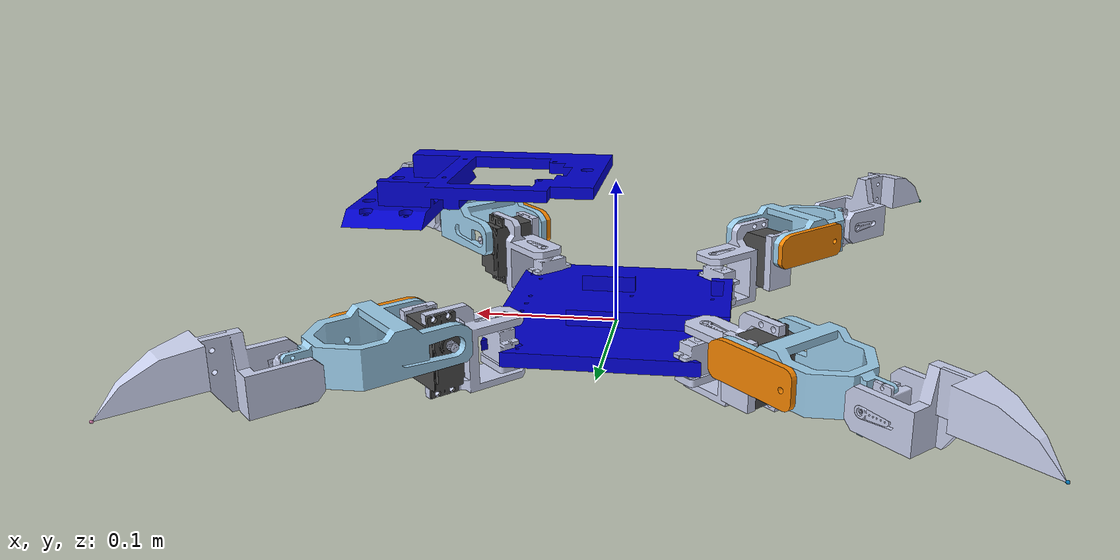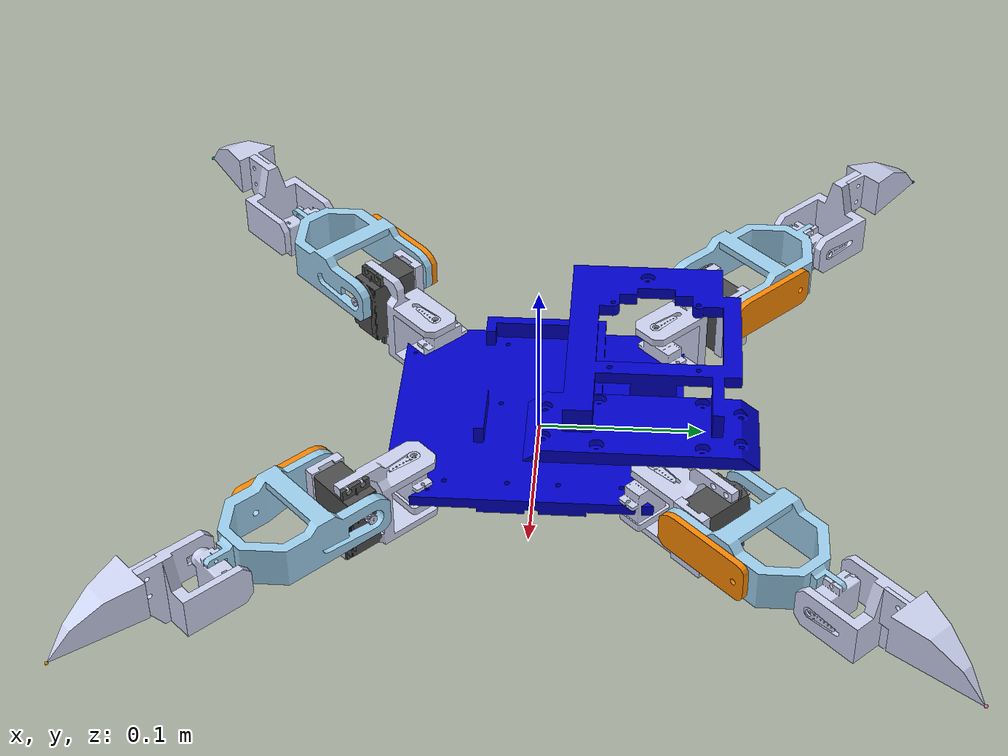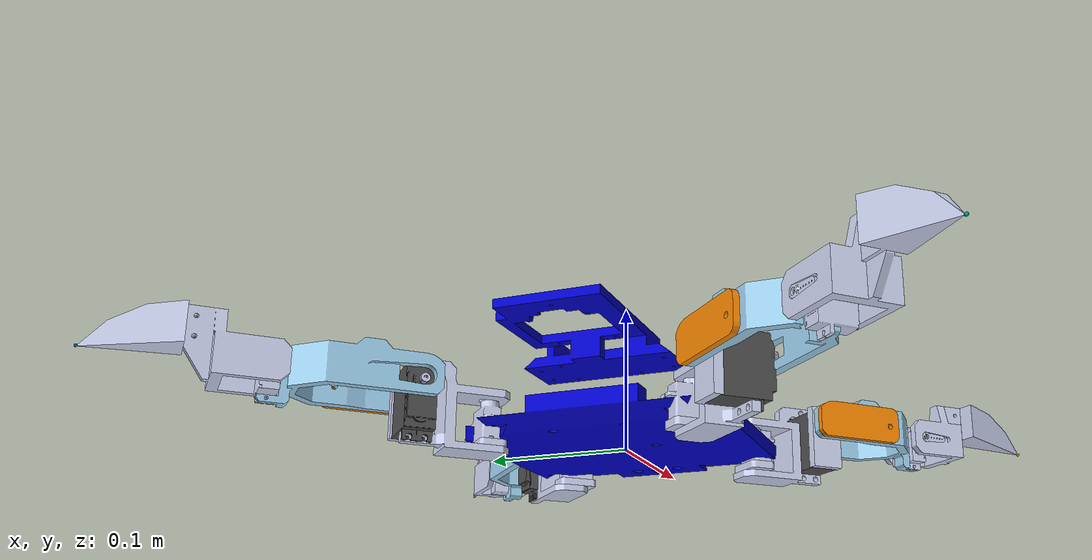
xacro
<?xml version="1.0"?>
<robot xmlns:xacro="http://www.ros.org/wiki/xacro" name="spider">
  <!--  Arguments  -->
  <xacro:arg name="use_mock_hardware" default="false"/>

  <!--  Include Xacro files  -->
  <xacro:include filename="$(find spider_capstone_description)/ros2_control/spider.ros2_control.xacro"/>
  <xacro:spider_ros2_control use_mock_hardware="$(arg use_mock_hardware)"/>
  <xacro:include filename="$(find spider_capstone_description)/urdf/leg_v2.urdf.xacro"/>
  <xacro:include filename="$(find spider_capstone_description)/gazebo/gazebo.urdf.xacro"/>

  <!--  Colors  -->
  <material name="blue">
          <color rgba="0 0 0.8 1"/>
  </material>
  <material name="green">
          <color rgba="0 0.8 0 1"/>
  </material>
  <material name="red">
          <color rgba="0.8 0 0 1"/>
  </material>
  <material name="white">
          <color rgba="0.8 0.8 0.8 1"/>
  </material>
  <material name="black">
    <color rgba="0 0 0 1"/>
  </material>

  <!--  Macro Properties  -->
  <xacro:property name="mesh_dir" value="package://spider_capstone_description/meshes/V2"/>
  <xacro:property name="mesh_scale" value="0.001"/>
  <xacro:property name="scale3" value="${mesh_scale} ${mesh_scale} ${mesh_scale}"/>

  <!--  Define base  -->
  <link name="base_link"/>

  <joint name="base_link_to_BaseLowerPlate" type="fixed">
          <parent link="base_link"/>
          <child link="BaseLowerPlate"/>
          <origin xyz="0 0 0" rpy="0 0 0"/>
  </joint>

  <link name="BaseLowerPlate">
          <visual>
                  <geometry>
                          <mesh filename="${mesh_dir}/BaseLowerPlate.stl" scale="${scale3}"/>
                  </geometry>
                  <material name="blue"/>
                  <origin xyz="-0.0795 0.0877 0.021" rpy="${pi} 0 0"/>
          </visual>
  </link>

  <joint name="BaseLowerPlate_to_BaseUpperPlate" type="fixed">
          <parent link="BaseLowerPlate"/>
          <child link="BaseUpperPlate"/>
          <origin xyz="0 0 0.1" rpy="0 0 0"/>
  </joint>

  <link name="BaseUpperPlate">
          <visual>
                  <geometry>
                          <mesh filename="${mesh_dir}/BaseUpperPlate.stl" scale="${scale3}"/>
                  </geometry>
                  <material name="blue"/>
                  <origin xyz="0 0 0" rpy="0 0 0"/>
          </visual>
  </link>

<!-- Call macro to create each leg -->
  <xacro:leg prefix="fr">
    <origin xyz="0.065 -0.0700 0.0235" rpy="0 0 ${-3*pi/4}"/>
  </xacro:leg>
  <xacro:leg prefix="fl">
    <origin xyz="0.065 0.0700 0.0235" rpy="0 0 ${-pi/4}"/>
  </xacro:leg>
  <xacro:leg prefix="bl">
    <origin xyz="-0.065 0.0700 0.0235" rpy="0 0 ${1*pi/4}"/>
  </xacro:leg>
  <xacro:leg prefix="br">
    <origin xyz="-0.065 -0.0700 0.0235" rpy="0 0 ${3*pi/4}"/>
  </xacro:leg>

</robot>

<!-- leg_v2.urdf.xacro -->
<!--URDF generated by ONSHAPE BY PTC INC, 1.213-->
<robot name="spider" xmlns:xacro="http://www.ros.org/wiki/xacro">
    <xacro:macro name="leg" params="prefix *sh_orig">
        <!--  Create first joint  -->
        <joint name="base_plate_2_${prefix}" type="fixed">
            <parent link="BaseLowerPlate"/>
            <child link="${prefix}_mg90s_body_1_solid1"/>
            <xacro:insert_block name="sh_orig"/>
        </joint>

        <link name="${prefix}_claw_tip">
            <inertial>
                <mass value="1.75677e-05" />
                <origin xyz="0.00127 0.022498 -0.0143189" rpy="0 -0 0" />
                <inertia ixx="3.68089e-09" ixy="0" ixz="0" iyy="1.45631e-09" iyz="4.9792e-10" izz="3.42152e-09" />
            </inertial>
            <visual>
                <origin xyz="0.00127 -0.181123 -0.03175" rpy="0 -0 0" />
                <geometry>
                    <mesh filename="package://spider_capstone_description/meshes/V2/claw tip.stl" scale="1 1 1" />
                </geometry>
                <material name="0.796078_0.823529_0.937255_0.000000_0.000000">
                    <texture />
                    <color rgba="0.796078 0.823529 0.937255 1" />
                </material>
            </visual>
        </link>
        <link name="${prefix}_link_1">
            <inertial>
                <mass value="1.79054e-05" />
                <origin xyz="-0.000826111 0.0217206 -0.0190256" rpy="0 -0 0" />
                <inertia ixx="9.35956e-09" ixy="2.83487e-10" ixz="1.69011e-10" iyy="6.31112e-09" iyz="-5.92444e-10" izz="4.88763e-09" />
            </inertial>
            <visual>
                <origin xyz="-7.95199e-19 -4.87891e-19 -0.00188" rpy="0 -0 0" />
                <geometry>
                    <mesh filename="package://spider_capstone_description/meshes/V2/Link 1.stl" scale="1 1 1" />
                </geometry>
                <material name="0.796078_0.823529_0.937255_0.000000_0.000000">
                    <texture />
                    <color rgba="0.796078 0.823529 0.937255 1" />
                </material>
            </visual>
        </link>
        <link name="${prefix}_link_2">
            <inertial>
                <mass value="3.51642e-05" />
                <origin xyz="-0.0271895 -0.00292913 0.00223503" rpy="0 -0 0" />
                <inertia ixx="2.57771e-08" ixy="3.45112e-10" ixz="8.67221e-11" iyy="1.83907e-08" iyz="1.18192e-09" izz="3.85571e-08" />
            </inertial>
            <visual>
                <origin xyz="-0.0289508 -0.0968311 -1.69136e-17" rpy="0 -0 0" />
                <geometry>
                    <mesh filename="package://spider_capstone_description/meshes/V2/Link 2.stl" scale="1 1 1" />
                </geometry>
                <material name="0.615686_0.811765_0.929412_0.000000_0.000000">
                    <texture />
                    <color rgba="0.615686 0.811765 0.929412 1" />
                </material>
            </visual>
        </link>
        <link name="${prefix}_link_3">
            <inertial>
                <mass value="1.98758e-05" />
                <origin xyz="-0.0212036 0.0226404 0.00349567" rpy="0 -0 0" />
                <inertia ixx="6.13545e-09" ixy="2.45391e-11" ixz="6.38731e-11" iyy="5.96934e-09" iyz="-9.06578e-10" izz="7.75081e-09" />
            </inertial>
            <visual>
                <origin xyz="-0.0189797 -0.14 -1.95117e-17" rpy="0 -0 0" />
                <geometry>
                    <mesh filename="package://spider_capstone_description/meshes/V2/Link 3.stl" scale="1 1 1" />
                </geometry>
                <material name="0.796078_0.823529_0.937255_0.000000_0.000000">
                    <texture />
                    <color rgba="0.796078 0.823529 0.937255 1" />
                </material>
            </visual>
        </link>
        <link name="${prefix}_mg90s_body_1_solid1">
            <inertial>
                <mass value="7.293e-06" />
                <origin xyz="0.00499948 6.12411e-10 -0.0152918" rpy="0 -0 0" />
                <inertia ixx="5.03315e-10" ixy="1.25043e-13" ixz="3.47219e-11" iyy="7.56418e-10" iyz="0" izz="4.25325e-10" />
            </inertial>
            <visual>
                <origin xyz="-8.67362e-19 -4.87891e-19 0.0036" rpy="0 -0 0" />
                <geometry>
                    <mesh filename="package://spider_capstone_description/meshes/V2/MG90S Body_1_solid1.stl" scale="1 1 1" />
                </geometry>
                <material name="0.796078_0.823529_0.937255_0.000000_0.000000">
                    <texture />
                    <color rgba="0.796078 0.823529 0.937255 1" />
                </material>
            </visual>
        </link>
        <link name="${prefix}_mg90s_body_1_solid1_1">
            <inertial>
                <mass value="7.293e-06" />
                <origin xyz="-0.00189181 6.12411e-10 0.0141505" rpy="0 -0 0" />
                <inertia ixx="4.25325e-10" ixy="0" ixz="-3.47219e-11" iyy="7.56418e-10" iyz="-1.25043e-13" izz="5.03315e-10" />
            </inertial>
            <visual>
                <origin xyz="-9.969e-05 -0.14 0.01915" rpy="0 -0 0" />
                <geometry>
                    <mesh filename="package://spider_capstone_description/meshes/V2/MG90S Body_1_solid1_1.stl" scale="1 1 1" />
                </geometry>
                <material name="0.796078_0.823529_0.937255_0.000000_0.000000">
                    <texture />
                    <color rgba="0.796078 0.823529 0.937255 1" />
                </material>
            </visual>
        </link>
        <link name="${prefix}_mg90s_top_1_solid2">
            <inertial>
                <mass value="2.92444e-07" />
                <origin xyz="0.00361718 0.00530087 -3.56276e-06" rpy="0 -0 0" />
                <inertia ixx="1.1265e-11" ixy="-2.93582e-13" ixz="0" iyy="1.42748e-12" iyz="6.10276e-15" izz="1.05075e-11" />
            </inertial>
            <visual>
                <origin xyz="-0.0134997 -0.14 -1.18099e-16" rpy="0 -0 0" />
                <geometry>
                    <mesh filename="package://spider_capstone_description/meshes/V2/MG90S Top_1_solid2.stl" scale="1 1 1" />
                </geometry>
                <material name="0.796078_0.823529_0.937255_0.000000_0.000000">
                    <texture />
                    <color rgba="0.796078 0.823529 0.937255 1" />
                </material>
            </visual>
        </link>
        <link name="${prefix}_mg90s_top_1_solid2_1">
            <inertial>
                <mass value="2.92444e-07" />
                <origin xyz="3.56276e-06 0.00530087 -0.00218282" rpy="0 -0 0" />
                <inertia ixx="1.05075e-11" ixy="-6.10276e-15" ixz="0" iyy="1.42748e-12" iyz="-2.93582e-13" izz="1.1265e-11" />
            </inertial>
            <visual>
                <origin xyz="9.97466e-17 -4.87891e-19 -0.0022" rpy="0 -0 0" />
                <geometry>
                    <mesh filename="package://spider_capstone_description/meshes/V2/MG90S Top_1_solid2_1.stl" scale="1 1 1" />
                </geometry>
                <material name="0.796078_0.823529_0.937255_0.000000_0.000000">
                    <texture />
                    <color rgba="0.796078 0.823529 0.937255 1" />
                </material>
            </visual>
        </link>
        <link name="${prefix}_mg995r">
            <inertial>
                <mass value="3.01951e-05" />
                <origin xyz="0.00867353 -0.005 -0.0241102" rpy="0 -0 0" />
                <inertia ixx="5.11798e-09" ixy="0" ixz="2.35098e-11" iyy="7.6641e-09" iyz="0" izz="4.50643e-09" />
            </inertial>
            <visual>
                <origin xyz="0.00899404 -0.055 -0.01415" rpy="0 -0 0" />
                <geometry>
                    <mesh filename="package://spider_capstone_description/meshes/V2/MG995R.stl" scale="1 1 1" />
                </geometry>
                <material name="0.301961_0.301961_0.301961_0.000000_0.000000">
                    <texture />
                    <color rgba="0.301961 0.301961 0.301961 1" />
                </material>
            </visual>
        </link>
        <link name="${prefix}_mg995r_axel">
            <inertial>
                <mass value="3.86986e-07" />
                <origin xyz="0.00327734 -5.90777e-14 2.29869e-14" rpy="0 -0 0" />
                <inertia ixx="1.8665e-12" ixy="0" ixz="0" iyy="8.52487e-12" iyz="0" izz="8.52487e-12" />
            </inertial>
            <visual>
                <origin xyz="0.019494 -0.05 4.93038e-35" rpy="0 -0 0" />
                <geometry>
                    <mesh filename="package://spider_capstone_description/meshes/V2/MG995R_axel.stl" scale="1 1 1" />
                </geometry>
                <material name="0.796078_0.823529_0.937255_0.000000_0.000000">
                    <texture />
                    <color rgba="0.796078 0.823529 0.937255 1" />
                </material>
            </visual>
        </link>
        <link name="${prefix}_mg996r_seat">
            <inertial>
                <mass value="3.09262e-06" />
                <origin xyz="0.000849309 -7.98706e-05 0.00113553" rpy="0 -0 0" />
                <inertia ixx="6.96578e-10" ixy="-3.64102e-13" ixz="-7.82475e-12" iyy="5.39489e-10" iyz="9.73697e-15" izz="1.74173e-10" />
            </inertial>
            <visual>
                <origin xyz="-0.019 -0.05 0.0112682" rpy="0 -0 0" />
                <geometry>
                    <mesh filename="package://spider_capstone_description/meshes/V2/MG996R_Seat.stl" scale="1 1 1" />
                </geometry>
                <material name="0.796078_0.823529_0.937255_0.000000_0.000000">
                    <texture />
                    <color rgba="0.796078 0.823529 0.937255 1" />
                </material>
            </visual>
        </link>
        <link name="${prefix}_mg996r_seat_pin">
            <inertial>
                <mass value="7.20083e-06" />
                <origin xyz="0.0112698 0.019388 0.000827221" rpy="0 -0 0" />
                <inertia ixx="2.87289e-09" ixy="-9.50747e-11" ixz="-4.05652e-12" iyy="3.86681e-10" iyz="-3.07331e-11" izz="2.57297e-09" />
            </inertial>
            <visual>
                <origin xyz="-0.019 -0.05 -1.73472e-17" rpy="0 -0 0" />
                <geometry>
                    <mesh filename="package://spider_capstone_description/meshes/V2/MG996R_seat_pin.stl" scale="1 1 1" />
                </geometry>
                <material name="0.972549_0.529412_0.003922_0.000000_0.000000">
                    <texture />
                    <color rgba="0.972549 0.529412 0.00392157 1" />
                </material>
            </visual>
        </link>
        <link name="${prefix}_small_servo_seat">
            <inertial>
                <mass value="1.48627e-06" />
                <origin xyz="-0.000500124 -0.00691528 -0.000514238" rpy="0 -0 0" />
                <inertia ixx="5.16975e-11" ixy="-8.46893e-14" ixz="1.37536e-12" iyy="1.08149e-10" iyz="3.11281e-13" izz="1.5424e-10" />
            </inertial>
            <visual>
                <origin xyz="-0.0053 -0.006508 0.0322" rpy="0 -0 0" />
                <geometry>
                    <mesh filename="package://spider_capstone_description/meshes/V2/small servo seat.stl" scale="1 1 1" />
                </geometry>
                <material name="0.796078_0.823529_0.937255_0.000000_0.000000">
                    <texture />
                    <color rgba="0.796078 0.823529 0.937255 1" />
                </material>
            </visual>
        </link>
        <joint name="${prefix}_fastened_10_0" type="fixed">
            <origin xyz="-0.0289511 0.0431689 -0.01915" rpy="0 0 -4.1601e-46" />
            <axis xyz="1 3.40103e-16 3.98986e-16" />
            <parent link="${prefix}_link_2" />
            <child link="${prefix}_mg90s_body_1_solid1_1" />
        </joint>

        <joint name="${prefix}_fastened_2_0" type="fixed">
            <origin xyz="0.0047 0.0058 -0.0286" rpy="0 -0 0" />
            <axis xyz="1 0 0" />
            <parent link="${prefix}_mg90s_body_1_solid1" />
            <child link="${prefix}_small_servo_seat" />
        </joint>
        <joint name="${prefix}_fastened_3_0" type="fixed">
            <origin xyz="-0.0202497 0.0411228 0.03175" rpy="2.66283e-10 -2.01625e-16 5.55112e-17" />
            <axis xyz="-2.23198e-16 1 -5.32569e-10" />
            <parent link="${prefix}_link_3" />
            <child link="${prefix}_claw_tip" />
        </joint>
        <joint name="${prefix}_fastened_4_0" type="fixed">
            <origin xyz="0.0058 2.77556e-17 3.46945e-18" rpy="1.1497e-25 -4.3176e-16 -5.82867e-16" />
            <axis xyz="1 3.40103e-16 3.98986e-16" />
            <parent link="${prefix}_mg90s_top_1_solid2" />
            <child link="${prefix}_link_3" />
        </joint>
        <joint name="${prefix}_fastened_5_0" type="fixed">
            <origin xyz="-0.00879404 0.055 0.01227" rpy="5.16168e-25 -6.83526e-18 -5.32569e-10" />
            <axis xyz="-1 -3.40103e-16 6.83526e-18" />
            <parent link="${prefix}_link_1" />
            <child link="${prefix}_mg995r" />
        </joint>
        <joint name="${prefix}_fastened_6_0" type="fixed">
            <origin xyz="1.0842e-19 1.0842e-19 -8.67362e-19" rpy="-5.20793e-18 -1.23722e-19 -2.77556e-17" />
            <axis xyz="0 0 1" />
            <parent link="${prefix}_link_1" />
            <child link="${prefix}_mg90s_top_1_solid2_1" />
        </joint>
        <joint name="${prefix}_fastened_7_0" type="fixed">
            <origin xyz="0.027994 -0.005 -0.02415" rpy="2.12375e-26 -2.34857e-18 -5.55111e-17" />
            <axis xyz="1 3.40103e-16 3.98986e-16" />
            <parent link="${prefix}_mg995r" />
            <child link="${prefix}_mg996r_seat" />
        </joint>
        <joint name="${prefix}_fastened_8_0" type="fixed">
            <origin xyz="-0.012 -0.005 -0.01415" rpy="4.54002e-32 -3.0006e-31 -5.55112e-17" />
            <axis xyz="-1 -3.40103e-16 -9.86076e-32" />
            <parent link="${prefix}_mg995r" />
            <child link="${prefix}_mg995r_axel" />
        </joint>
        <joint name="${prefix}_fastened_9_0" type="fixed">
            <origin xyz="0.00995077 0.0468311 0" rpy="0 0 -4.1601e-46" />
            <axis xyz="-1 0 0" />
            <parent link="${prefix}_mg996r_seat_pin" />
            <child link="${prefix}_link_2" />
        </joint>
        <joint name="${prefix}_hip" type="revolute">
            <origin xyz="-0.0053 -0.006508 0.03408" rpy="5.37143e-25 -1.6899e-25 -4.77163e-50" />
            <axis xyz="0 0 1" />
            <parent link="${prefix}_small_servo_seat" />
            <child link="${prefix}_link_1" />
            <limit lower="-${pi/2}" upper="${pi/2}" effort="1000" velocity="1.0"/>
        </joint>
        <joint name="${prefix}_knee" type="revolute">
            <origin xyz="5.13478e-16 3.19189e-16 0.0112682" rpy="-2.498e-15 6.80837e-17 1.01795e-16" />
            <axis xyz="-1 0 0" />
            <parent link="${prefix}_mg996r_seat" />
            <child link="${prefix}_mg996r_seat_pin" />
            <limit lower="-${pi/2}" upper="${pi/2}" effort="1000" velocity="1.0"/>
        </joint>
        <joint name="${prefix}_ankle" type="revolute">
            <origin xyz="0.0134 5.55112e-17 0.01915" rpy="3.55271e-15 -1.5812e-25 -6.12323e-17" />
            <axis xyz="-1 3.40103e-16 3.98986e-16" />
            <parent link="${prefix}_mg90s_body_1_solid1_1" />
            <child link="${prefix}_mg90s_top_1_solid2" />
            <limit lower="-${pi/2}" upper="${pi/2}" effort="1000" velocity="1.0"/>
        </joint>

        <joint name="${prefix}_claw_2_end_effector" type="fixed">
            <origin xyz="0.001 0.064 -0.0315"/>
            <parent link="${prefix}_claw_tip"/>
            <child link="${prefix}_end_effector"/>
        </joint>

        <link name="${prefix}_end_effector">
            <visual>
              <geometry>
                <sphere radius="0.001"/>
              </geometry>
            </visual>
          </link>
    </xacro:macro>
</robot>
